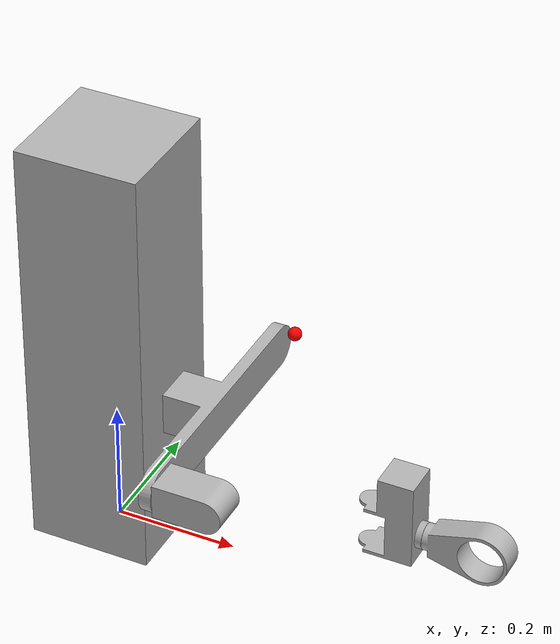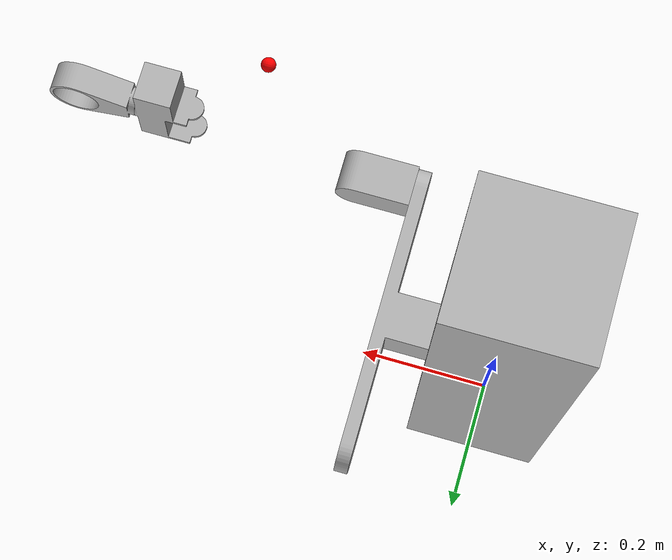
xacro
<?xml version="1.0"?>
<robot xmlns:xacro="http://www.ros.org/wiki/xacro" name="gantry_robot">
    <xacro:arg name="initial_positions_file" default="initial_positions.yaml" />

    <!-- Import gantry_robot urdf file -->
    <xacro:include filename="$(find models)/urdf/scene.xacro" />

    <!-- Import control_xacro -->
    <xacro:include filename="gantry_robot.ros2_control.xacro" />

    <xacro:gantry_robot_ros2_control name="FakeSystem" initial_positions_file="$(arg initial_positions_file)"/>

</robot>

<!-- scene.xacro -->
<robot xmlns:xacro="http://www.ros.org/wiki/xacro" name="gantry_robot">

    <link name="world" />

    <xacro:include filename="gantry_robot.xacro" />

    <xacro:gantry_robot />

</robot>

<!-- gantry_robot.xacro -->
<robot xmlns:xacro="http://www.ros.org/wiki/xacro" name="gantry_robot">
  <xacro:macro name="gantry_robot">

  <material name="grey">
    <color rgba="0.7 0.7 0.7 1.0" />
  </material>

  <!-- link name="world" / -->

  <!-- IPM (Imaginary Point Marker) - 参考点 -->
  <link name="ipm">
    <visual>
      <origin xyz="0 0 0" rpy="0 0 0" />
      <geometry>
        <sphere radius="0.01" />
      </geometry>
      <material name="marker-material">
        <color rgba="1 0 0 1" />
      </material>
    </visual>
    <inertial>
      <origin xyz="0 0 0" rpy="0 0 0" />
      <mass value="0.01" />
      <inertia ixx="0.0001" ixy="0" ixz="0" iyy="0.0001" iyz="0" izz="0.0001" />
    </inertial>
  </link>

  <joint name="world_to_ipm" type="fixed">
    <parent link="world" />
    <child link="ipm" />
    <origin xyz="0.4 -0.2 0.6" rpy="1.57 0 -1.57" />
  </joint>

  <link name="x_rail"/>
  <joint name="world_to_x_rail" type="fixed">
    <parent link="world" />
    <child link="x_rail" />
    <origin xyz="0 0 0" rpy="0 0 0" />
  </joint>

  <link name="y_rail"/>
  <joint name="x_rail_to_y_rail" type="fixed">
    <parent link="x_rail" />
    <child link="y_rail" />
    <origin xyz="0 0 0" rpy="0 0 0" />
  </joint>

  <link name="link1">
    <visual>
      <origin xyz="0 0 0" rpy="0 0 0" />
      <geometry>
        <mesh filename="package://models/meshes/link1.STL" scale="0.001 0.001 0.001" />
      </geometry>
      <material name="grey" />
    </visual>
    <collision>
      <origin xyz="0 0 0" rpy="0 0 0" />
      <geometry>
        <mesh filename="package://models/meshes/link1.STL" scale="0.001 0.001 0.001" />
      </geometry>
    </collision>
    <inertial>
      <mass value="1.0" />
      <inertia ixx="0.1" ixy="0.0" ixz="0.0" iyy="0.1" iyz="0.0" izz="0.1" />
    </inertial>
  </link>

  <joint name="y_rail_to_link1" type="fixed">
    <parent link="y_rail" />
    <child link="link1" />
    <origin xyz="0 0 0.35" rpy="0 0 0" />
  </joint>

  <link name="link2">
    <visual>
      <origin xyz="0 0 0" rpy="0 0 0" />
      <geometry>
        <mesh filename="package://models/meshes/link2.STL" scale="0.001 0.001 0.001" />
      </geometry>
      <material name="grey" />
    </visual>
    <collision>
      <origin xyz="0 0 0" rpy="0 0 0" />
      <geometry>
        <mesh filename="package://models/meshes/link2.STL" scale="0.001 0.001 0.001" />
      </geometry>
    </collision>
    <inertial>
      <mass value="1.0" />
      <inertia ixx="0.1" ixy="0.0" ixz="0.0" iyy="0.1" iyz="0.0" izz="0.1" />
    </inertial>
  </link>

  <joint name="joint_1_2" type="prismatic">
    <parent link="link1" />
    <child link="link2" />
    <origin xyz="0.1 0 0.2" rpy="0 0 0" />
    <axis xyz="0 0 1"/>
    <limit lower="-0.3" upper="-0.3" velocity="0.5" effort="1000"/>
  </joint>

  <link name="link3">
    <visual>
      <origin xyz="0 0 0" rpy="0 0 0" />
      <geometry>
        <mesh filename="package://models/meshes/link3.STL" scale="0.001 0.001 0.001" />
      </geometry>
      <material name="grey" />
    </visual>
    <collision>
      <origin xyz="0 0 0" rpy="0 0 0" />
      <geometry>
        <mesh filename="package://models/meshes/link3.STL" scale="0.001 0.001 0.001" />
      </geometry>
    </collision>
    <inertial>
      <mass value="1.0" />
      <inertia ixx="0.1" ixy="0.0" ixz="0.0" iyy="0.1" iyz="0.0" izz="0.1" />
    </inertial>
  </link>

  <joint name="joint_2_3" type="revolute">
    <parent link="link2" />
    <child link="link3" />
    <origin xyz="0.141 -0.2 0" rpy="0 1.57 0" />
    <axis xyz="0 0 1"/>
    <limit lower="0" upper="6.28" effort="1000" velocity="1.0"/>
  </joint>

  <link name="link4">
    <visual>
      <origin xyz="-0.063 0.04 0" rpy="0 0 0" />
      <geometry>
        <mesh filename="package://models/meshes/link4.STL" scale="0.001 0.001 0.001" />
      </geometry>
      <material name="grey" />
    </visual>
    <collision>
      <origin xyz="-0.063 0.04 0" rpy="0 0 0" />
      <geometry>
        <mesh filename="package://models/meshes/link4.STL" scale="0.001 0.001 0.001" />
      </geometry>
    </collision>
    <inertial>
      <mass value="1.0" />
      <inertia ixx="0.1" ixy="0.0" ixz="0.0" iyy="0.1" iyz="0.0" izz="0.1" />
    </inertial>
  </link>

  <joint name="joint_3_4" type="revolute">
    <parent link="link3" />
    <child link="link4" />
    <origin xyz="0 0 0.03" rpy="-1.57 1.57 0" />
    <axis xyz="0 0 1"/>
    <limit lower="0" upper="3.14" effort="1000" velocity="1.0"/>
  </joint>

  <link name="link5">
    <visual>
      <origin xyz="0 0 0" rpy="0 0 0" />
      <geometry>
        <mesh filename="package://models/meshes/link5.STL" scale="0.001 0.001 0.001" />
      </geometry>
      <material name="grey" />
    </visual>
    <collision>
      <origin xyz="0 0 0" rpy="0 0 0" />
      <geometry>
        <mesh filename="package://models/meshes/link5.STL" scale="0.001 0.001 0.001" />
      </geometry>
    </collision>
    <inertial>
      <mass value="1.0" />
      <inertia ixx="0.1" ixy="0.0" ixz="0.0" iyy="0.1" iyz="0.0" izz="0.1" />
    </inertial>
  </link>

  <joint name="joint_4_5" type="revolute">
    <parent link="link4" />
    <child link="link5" />
    <origin xyz="-0.226 0.06557 0" rpy="0 1.57 1.57" />
    <axis xyz="0 1 0"/>
    <limit lower="-3.14" upper="3.14" effort="1000" velocity="1.0"/>
  </joint>

  <link name="link6">
    <visual>
      <origin xyz="-0.03 0.034 0" rpy="0 0 0" />
      <geometry>
        <mesh filename="package://models/meshes/link6.STL" scale="0.001 0.001 0.001" />
      </geometry>
      <material name="grey" />
    </visual>
    <collision>
      <origin xyz="-0.03 0.034 0" rpy="0 0 0" />
      <geometry>
        <mesh filename="package://models/meshes/link6.STL" scale="0.001 0.001 0.001" />
      </geometry>
    </collision>
    <inertial>
      <mass value="1.0" />
      <inertia ixx="0.1" ixy="0.0" ixz="0.0" iyy="0.1" iyz="0.0" izz="0.1" />
    </inertial>
  </link>

  <joint name="joint_5_6" type="revolute">
    <parent link="link5" />
    <child link="link6" />
    <origin xyz="0 0.025 0" rpy="0 1.57 0" />
    <axis xyz="1 0 0"/>
    <limit lower="-1.57" upper="1.57" effort="1000" velocity="1.0"/>
  </joint>

  <link name="link7">
    <visual>
      <origin xyz="0 -0.0295 0" rpy="0 0 0" />
      <geometry>
        <mesh filename="package://models/meshes/link7.STL" scale="0.001 0.001 0.001" />
      </geometry>
      <material name="grey" />
    </visual>
    <collision>
      <origin xyz="0 -0.0295 0" rpy="0 0 0" />
      <geometry>
        <mesh filename="package://models/meshes/link7.STL" scale="0.001 0.001 0.001" />
      </geometry>
    </collision>
    <inertial>
      <mass value="1.0" />
      <inertia ixx="0.1" ixy="0.0" ixz="0.0" iyy="0.1" iyz="0.0" izz="0.1" />
    </inertial>
  </link>

  <joint name="joint_6_7" type="revolute">
    <parent link="link6" />
    <child link="link7" />
    <origin xyz="-0.0015 0.18 0" rpy="0 3.14 0" />
    <axis xyz="0 1 0"/>
    <limit lower="-3.14" upper="3.14" effort="1000" velocity="1.0"/>
  </joint>

  </xacro:macro>
</robot>
